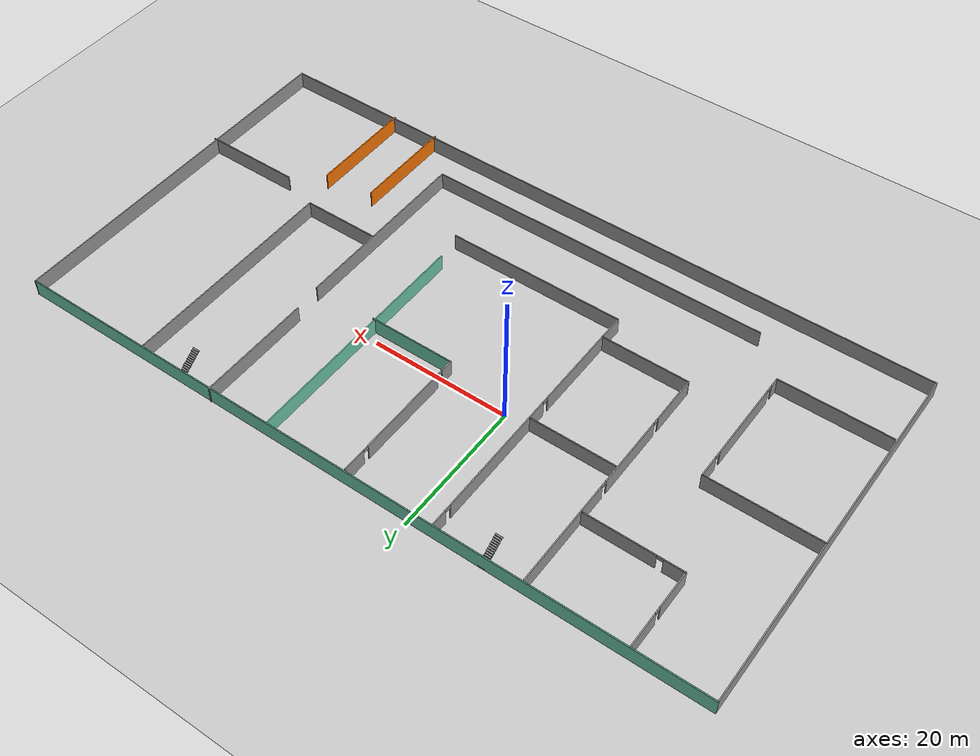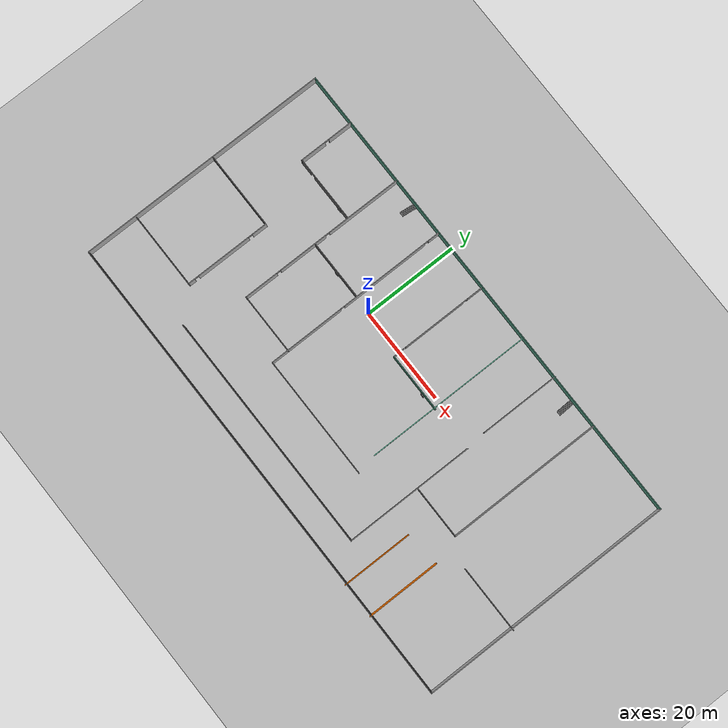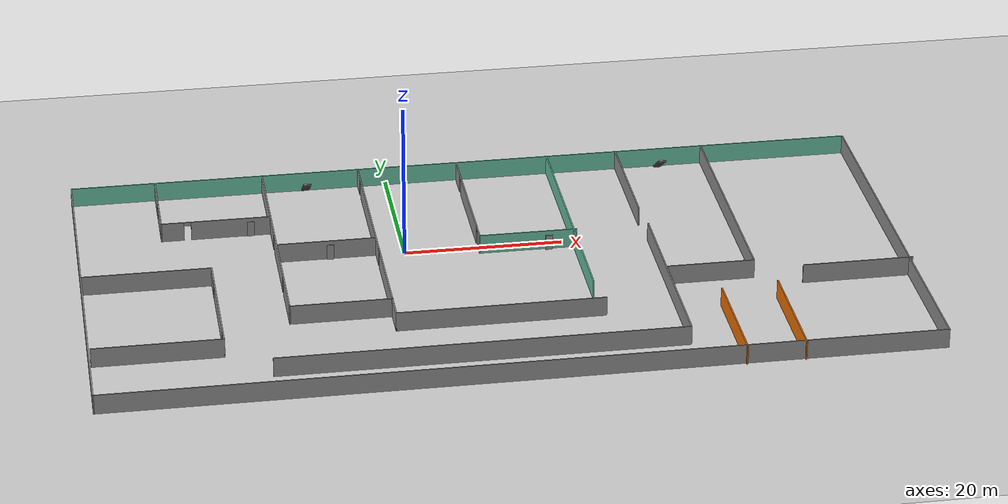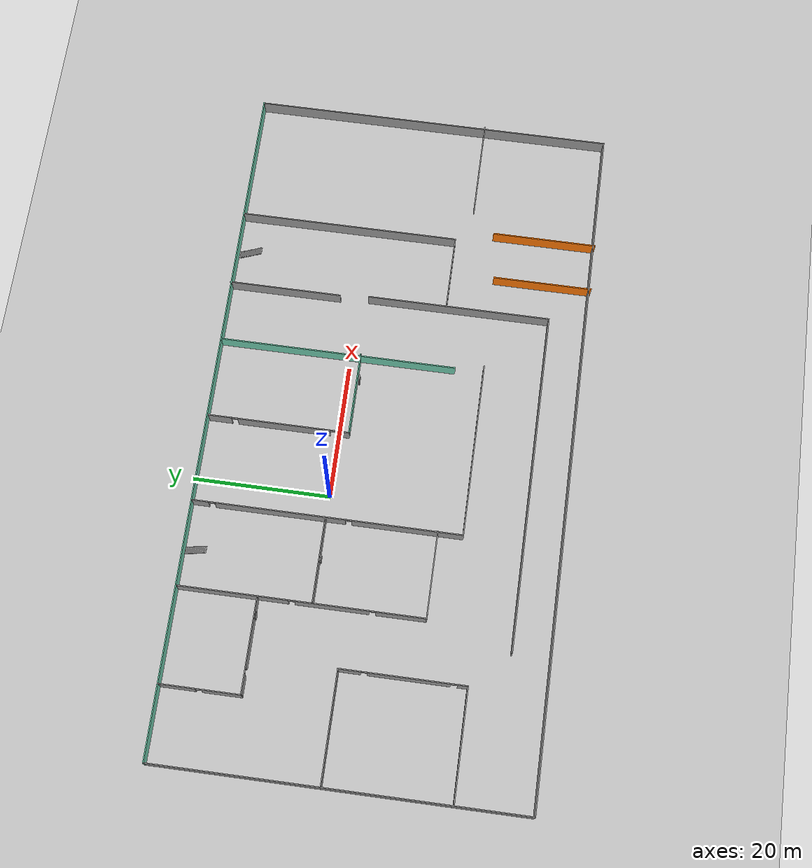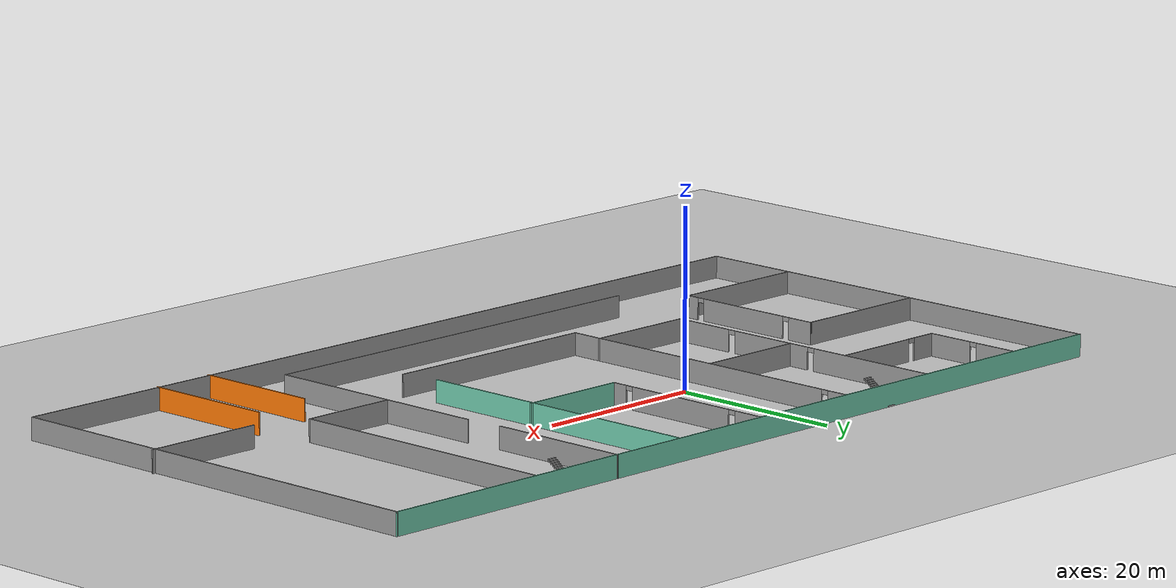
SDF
<sdf version="1.6">
 <world name="default">
  <model name="ground_plane">
   <static>1</static>
   <link name="link">
    <collision name="collision">
     <geometry><plane><normal>0 0 1</normal><size>100 100</size></plane></geometry>
     <surface>
      <contact><collide_bitmask>65535</collide_bitmask></contact>
      <friction><ode><mu>100</mu><mu2>50</mu2></ode></friction>
     </surface>
    </collision>
    <visual name="visual">
     <cast_shadows>0</cast_shadows>
     <geometry><plane><normal>0 0 1</normal><size>100 100</size></plane></geometry>
     <material>
      <script><uri>file://media/materials/scripts/gazebo.material</uri><name>Gazebo/Grey</name></script>
     </material>
    </visual>
   </link>
  </model>
  <model name="building1">
   <pose>10.3935 -7.33421 0 0 -0 0</pose>
   <link name="Door_0">
    <collision name="Door_0_Collision">
     <geometry><box><size>0.9 0.17 2</size></box></geometry>
     <pose>0 0 1 0 -0 0</pose>
    </collision>
    <visual name="Door_0_Visual">
     <pose>0 0 1 0 -0 0</pose>
     <geometry><box><size>0.9 0.17 2</size></box></geometry>
     <material>
      <script><uri>file://media/materials/scripts/gazebo.material</uri><name>Gazebo/Grey</name></script>
     </material>
    </visual>
    <pose>7.78162 5.61116 0 0 -0 0</pose>
   </link>
   <link name="Door_4">
    <collision name="Door_4_Collision">
     <geometry><box><size>0.9 0.17 2</size></box></geometry>
     <pose>0 0 1 0 -0 0</pose>
    </collision>
    <visual name="Door_4_Visual">
     <pose>0 0 1 0 -0 0</pose>
     <geometry><box><size>0.9 0.17 2</size></box></geometry>
     <material>
      <script><uri>file://media/materials/scripts/gazebo.material</uri><name>Gazebo/Grey</name></script>
     </material>
    </visual>
    <pose>-29.1903 15.0893 0 0 -0 0</pose>
   </link>
   <link name="Door_8">
    <collision name="Door_8_Collision">
     <geometry><box><size>0.9 0.17 2</size></box></geometry>
     <pose>0 0 1 0 -0 0</pose>
    </collision>
    <visual name="Door_8_Visual">
     <pose>0 0 1 0 -0 0</pose>
     <geometry><box><size>0.9 0.17 2</size></box></geometry>
     <material>
      <script><uri>file://media/materials/scripts/gazebo.material</uri><name>Gazebo/Grey</name></script>
     </material>
    </visual>
    <pose>-19.8614 7.23332 0 0 -0 0</pose>
   </link>
   <link name="Stairs_0">
    <visual name="Stairs_0_Visual_0">
     <pose>25.8503 26.4424 0.083333 0 -0 0</pose>
     <geometry><box><size>1 0.233333 0.166667</size></box></geometry>
     <material>
      <script><uri>file://media/materials/scripts/gazebo.material</uri><name>Gazebo/Grey</name></script>
      <ambient>1 1 1 1</ambient>
     </material>
     <meta><layer>0</layer></meta>
    </visual>
    <collision name="Stairs_0_Collision_0">
     <geometry><box><size>1 0.233333 0.166667</size></box></geometry>
     <pose>25.8503 26.4424 0.083333 0 -0 0</pose>
    </collision>
    <visual name="Stairs_0_Visual_1">
     <pose>25.8503 26.2091 0.25 0 -0 0</pose>
     <geometry><box><size>1 0.233333 0.166667</size></box></geometry>
     <material>
      <script><uri>file://media/materials/scripts/gazebo.material</uri><name>Gazebo/Grey</name></script>
      <ambient>1 1 1 1</ambient>
     </material>
     <meta><layer>0</layer></meta>
    </visual>
    <collision name="Stairs_0_Collision_1">
     <geometry><box><size>1 0.233333 0.166667</size></box></geometry>
     <pose>25.8503 26.2091 0.25 0 -0 0</pose>
    </collision>
    <visual name="Stairs_0_Visual_2">
     <pose>25.8503 25.9758 0.416667 0 -0 0</pose>
     <geometry><box><size>1 0.233333 0.166667</size></box></geometry>
     <material>
      <script><uri>file://media/materials/scripts/gazebo.material</uri><name>Gazebo/Grey</name></script>
      <ambient>1 1 1 1</ambient>
     </material>
     <meta><layer>0</layer></meta>
    </visual>
    <collision name="Stairs_0_Collision_2">
     <geometry><box><size>1 0.233333 0.166667</size></box></geometry>
     <pose>25.8503 25.9758 0.416667 0 -0 0</pose>
    </collision>
    <visual name="Stairs_0_Visual_3">
     <pose>25.8503 25.7424 0.583333 0 -0 0</pose>
     <geometry><box><size>1 0.233333 0.166667</size></box></geometry>
     <material>
      <script><uri>file://media/materials/scripts/gazebo.material</uri><name>Gazebo/Grey</name></script>
      <ambient>1 1 1 1</ambient>
     </material>
     <meta><layer>0</layer></meta>
    </visual>
    <collision name="Stairs_0_Collision_3">
     <geometry><box><size>1 0.233333 0.166667</size></box></geometry>
     <pose>25.8503 25.7424 0.583333 0 -0 0</pose>
    </collision>
    <visual name="Stairs_0_Visual_4">
     <pose>25.8503 25.5091 0.75 0 -0 0</pose>
     <geometry><box><size>1 0.233333 0.166667</size></box></geometry>
     <material>
      <script><uri>file://media/materials/scripts/gazebo.material</uri><name>Gazebo/Grey</name></script>
      <ambient>1 1 1 1</ambient>
     </material>
     <meta><layer>0</layer></meta>
    </visual>
    <collision name="Stairs_0_Collision_4">
     <geometry><box><size>1 0.233333 0.166667</size></box></geometry>
     <pose>25.8503 25.5091 0.75 0 -0 0</pose>
    </collision>
    <visual name="Stairs_0_Visual_5">
     <pose>25.8503 25.2758 0.916667 0 -0 0</pose>
     <geometry><box><size>1 0.233333 0.166667</size></box></geometry>
     <material>
      <script><uri>file://media/materials/scripts/gazebo.material</uri><name>Gazebo/Grey</name></script>
      <ambient>1 1 1 1</ambient>
     </material>
     <meta><layer>0</layer></meta>
    </visual>
    <collision name="Stairs_0_Collision_5">
     <geometry><box><size>1 0.233333 0.166667</size></box></geometry>
     <pose>25.8503 25.2758 0.916667 0 -0 0</pose>
    </collision>
    <visual name="Stairs_0_Visual_6">
     <pose>25.8503 25.0424 1.08333 0 -0 0</pose>
     <geometry><box><size>1 0.233333 0.166667</size></box></geometry>
     <material>
      <script><uri>file://media/materials/scripts/gazebo.material</uri><name>Gazebo/Grey</name></script>
      <ambient>1 1 1 1</ambient>
     </material>
     <meta><layer>0</layer></meta>
    </visual>
    <collision name="Stairs_0_Collision_6">
     <geometry><box><size>1 0.233333 0.166667</size></box></geometry>
     <pose>25.8503 25.0424 1.08333 0 -0 0</pose>
    </collision>
    <visual name="Stairs_0_Visual_7">
     <pose>25.8503 24.8091 1.25 0 -0 0</pose>
     <geometry><box><size>1 0.233333 0.166667</size></box></geometry>
     <material>
      <script><uri>file://media/materials/scripts/gazebo.material</uri><name>Gazebo/Grey</name></script>
      <ambient>1 1 1 1</ambient>
     </material>
     <meta><layer>0</layer></meta>
    </visual>
    <collision name="Stairs_0_Collision_7">
     <geometry><box><size>1 0.233333 0.166667</size></box></geometry>
     <pose>25.8503 24.8091 1.25 0 -0 0</pose>
    </collision>
    <visual name="Stairs_0_Visual_8">
     <pose>25.8503 24.5758 1.41667 0 -0 0</pose>
     <geometry><box><size>1 0.233333 0.166667</size></box></geometry>
     <material>
      <script><uri>file://media/materials/scripts/gazebo.material</uri><name>Gazebo/Grey</name></script>
      <ambient>1 1 1 1</ambient>
     </material>
     <meta><layer>0</layer></meta>
    </visual>
    <collision name="Stairs_0_Collision_8">
     <geometry><box><size>1 0.233333 0.166667</size></box></geometry>
     <pose>25.8503 24.5758 1.41667 0 -0 0</pose>
    </collision>
    <visual name="Stairs_0_Visual_9">
     <pose>25.8503 24.3424 1.58333 0 -0 0</pose>
     <geometry><box><size>1 0.233333 0.166667</size></box></geometry>
     <material>
      <script><uri>file://media/materials/scripts/gazebo.material</uri><name>Gazebo/Grey</name></script>
      <ambient>1 1 1 1</ambient>
     </material>
     <meta><layer>0</layer></meta>
    </visual>
    <collision name="Stairs_0_Collision_9">
     <geometry><box><size>1 0.233333 0.166667</size></box></geometry>
     <pose>25.8503 24.3424 1.58333 0 -0 0</pose>
    </collision>
    <visual name="Stairs_0_Visual_10">
     <pose>25.8503 24.1091 1.75 0 -0 0</pose>
     <geometry><box><size>1 0.233333 0.166667</size></box></geometry>
     <material>
      <script><uri>file://media/materials/scripts/gazebo.material</uri><name>Gazebo/Grey</name></script>
      <ambient>1 1 1 1</ambient>
     </material>
     <meta><layer>0</layer></meta>
    </visual>
    <collision name="Stairs_0_Collision_10">
     <geometry><box><size>1 0.233333 0.166667</size></box></geometry>
     <pose>25.8503 24.1091 1.75 0 -0 0</pose>
    </collision>
    <visual name="Stairs_0_Visual_11">
     <pose>25.8503 23.8758 1.91667 0 -0 0</pose>
     <geometry><box><size>1 0.233333 0.166667</size></box></geometry>
     <material>
      <script><uri>file://media/materials/scripts/gazebo.material</uri><name>Gazebo/Grey</name></script>
      <ambient>1 1 1 1</ambient>
     </material>
     <meta><layer>0</layer></meta>
    </visual>
    <collision name="Stairs_0_Collision_11">
     <geometry><box><size>1 0.233333 0.166667</size></box></geometry>
     <pose>25.8503 23.8758 1.91667 0 -0 0</pose>
    </collision>
    <visual name="Stairs_0_Visual_12">
     <pose>25.8503 23.6424 2.08333 0 -0 0</pose>
     <geometry><box><size>1 0.233333 0.166667</size></box></geometry>
     <material>
      <script><uri>file://media/materials/scripts/gazebo.material</uri><name>Gazebo/Grey</name></script>
      <ambient>1 1 1 1</ambient>
     </material>
     <meta><layer>0</layer></meta>
    </visual>
    <collision name="Stairs_0_Collision_12">
     <geometry><box><size>1 0.233333 0.166667</size></box></geometry>
     <pose>25.8503 23.6424 2.08333 0 -0 0</pose>
    </collision>
    <visual name="Stairs_0_Visual_13">
     <pose>25.8503 23.4091 2.25 0 -0 0</pose>
     <geometry><box><size>1 0.233333 0.166667</size></box></geometry>
     <material>
      <script><uri>file://media/materials/scripts/gazebo.material</uri><name>Gazebo/Grey</name></script>
      <ambient>1 1 1 1</ambient>
     </material>
     <meta><layer>0</layer></meta>
    </visual>
    <collision name="Stairs_0_Collision_13">
     <geometry><box><size>1 0.233333 0.166667</size></box></geometry>
     <pose>25.8503 23.4091 2.25 0 -0 0</pose>
    </collision>
    <visual name="Stairs_0_Visual_14">
     <pose>25.8503 23.1758 2.41667 0 -0 0</pose>
     <geometry><box><size>1 0.233333 0.166667</size></box></geometry>
     <material>
      <script><uri>file://media/materials/scripts/gazebo.material</uri><name>Gazebo/Grey</name></script>
      <ambient>1 1 1 1</ambient>
     </material>
     <meta><layer>0</layer></meta>
    </visual>
    <collision name="Stairs_0_Collision_14">
     <geometry><box><size>1 0.233333 0.166667</size></box></geometry>
     <pose>25.8503 23.1758 2.41667 0 -0 0</pose>
    </collision>
   </link>
   <link name="Stairs_1">
    <visual name="Stairs_1_Visual_0">
     <pose>-21.0203 26.752 0.083333 0 -0 0</pose>
     <geometry><box><size>1 0.233333 0.166667</size></box></geometry>
     <material>
      <script><uri>file://media/materials/scripts/gazebo.material</uri><name>Gazebo/Grey</name></script>
      <ambient>1 1 1 1</ambient>
     </material>
     <meta><layer>0</layer></meta>
    </visual>
    <collision name="Stairs_1_Collision_0">
     <geometry><box><size>1 0.233333 0.166667</size></box></geometry>
     <pose>-21.0203 26.752 0.083333 0 -0 0</pose>
    </collision>
    <visual name="Stairs_1_Visual_1">
     <pose>-21.0203 26.5186 0.25 0 -0 0</pose>
     <geometry><box><size>1 0.233333 0.166667</size></box></geometry>
     <material>
      <script><uri>file://media/materials/scripts/gazebo.material</uri><name>Gazebo/Grey</name></script>
      <ambient>1 1 1 1</ambient>
     </material>
     <meta><layer>0</layer></meta>
    </visual>
    <collision name="Stairs_1_Collision_1">
     <geometry><box><size>1 0.233333 0.166667</size></box></geometry>
     <pose>-21.0203 26.5186 0.25 0 -0 0</pose>
    </collision>
    <visual name="Stairs_1_Visual_2">
     <pose>-21.0203 26.2853 0.416667 0 -0 0</pose>
     <geometry><box><size>1 0.233333 0.166667</size></box></geometry>
     <material>
      <script><uri>file://media/materials/scripts/gazebo.material</uri><name>Gazebo/Grey</name></script>
      <ambient>1 1 1 1</ambient>
     </material>
     <meta><layer>0</layer></meta>
    </visual>
    <collision name="Stairs_1_Collision_2">
     <geometry><box><size>1 0.233333 0.166667</size></box></geometry>
     <pose>-21.0203 26.2853 0.416667 0 -0 0</pose>
    </collision>
    <visual name="Stairs_1_Visual_3">
     <pose>-21.0203 26.052 0.583333 0 -0 0</pose>
     <geometry><box><size>1 0.233333 0.166667</size></box></geometry>
     <material>
      <script><uri>file://media/materials/scripts/gazebo.material</uri><name>Gazebo/Grey</name></script>
      <ambient>1 1 1 1</ambient>
     </material>
     <meta><layer>0</layer></meta>
    </visual>
    <collision name="Stairs_1_Collision_3">
     <geometry><box><size>1 0.233333 0.166667</size></box></geometry>
     <pose>-21.0203 26.052 0.583333 0 -0 0</pose>
    </collision>
    <visual name="Stairs_1_Visual_4">
     <pose>-21.0203 25.8186 0.75 0 -0 0</pose>
     <geometry><box><size>1 0.233333 0.166667</size></box></geometry>
     <material>
      <script><uri>file://media/materials/scripts/gazebo.material</uri><name>Gazebo/Grey</name></script>
      <ambient>1 1 1 1</ambient>
     </material>
     <meta><layer>0</layer></meta>
    </visual>
    <collision name="Stairs_1_Collision_4">
     <geometry><box><size>1 0.233333 0.166667</size></box></geometry>
     <pose>-21.0203 25.8186 0.75 0 -0 0</pose>
    </collision>
    <visual name="Stairs_1_Visual_5">
     <pose>-21.0203 25.5853 0.916667 0 -0 0</pose>
     <geometry><box><size>1 0.233333 0.166667</size></box></geometry>
     <material>
      <script><uri>file://media/materials/scripts/gazebo.material</uri><name>Gazebo/Grey</name></script>
      <ambient>1 1 1 1</ambient>
     </material>
     <meta><layer>0</layer></meta>
    </visual>
    <collision name="Stairs_1_Collision_5">
     <geometry><box><size>1 0.233333 0.166667</size></box></geometry>
     <pose>-21.0203 25.5853 0.916667 0 -0 0</pose>
    </collision>
    <visual name="Stairs_1_Visual_6">
     <pose>-21.0203 25.352 1.08333 0 -0 0</pose>
     <geometry><box><size>1 0.233333 0.166667</size></box></geometry>
     <material>
      <script><uri>file://media/materials/scripts/gazebo.material</uri><name>Gazebo/Grey</name></script>
      <ambient>1 1 1 1</ambient>
     </material>
     <meta><layer>0</layer></meta>
    </visual>
    <collision name="Stairs_1_Collision_6">
     <geometry><box><size>1 0.233333 0.166667</size></box></geometry>
     <pose>-21.0203 25.352 1.08333 0 -0 0</pose>
    </collision>
    <visual name="Stairs_1_Visual_7">
     <pose>-21.0203 25.1186 1.25 0 -0 0</pose>
     <geometry><box><size>1 0.233333 0.166667</size></box></geometry>
     <material>
      <script><uri>file://media/materials/scripts/gazebo.material</uri><name>Gazebo/Grey</name></script>
      <ambient>1 1 1 1</ambient>
     </material>
     <meta><layer>0</layer></meta>
    </visual>
    <collision name="Stairs_1_Collision_7">
     <geometry><box><size>1 0.233333 0.166667</size></box></geometry>
     <pose>-21.0203 25.1186 1.25 0 -0 0</pose>
    </collision>
    <visual name="Stairs_1_Visual_8">
     <pose>-21.0203 24.8853 1.41667 0 -0 0</pose>
     <geometry><box><size>1 0.233333 0.166667</size></box></geometry>
     <material>
      <script><uri>file://media/materials/scripts/gazebo.material</uri><name>Gazebo/Grey</name></script>
      <ambient>1 1 1 1</ambient>
     </material>
     <meta><layer>0</layer></meta>
    </visual>
    <collision name="Stairs_1_Collision_8">
     <geometry><box><size>1 0.233333 0.166667</size></box></geometry>
     <pose>-21.0203 24.8853 1.41667 0 -0 0</pose>
    </collision>
    <visual name="Stairs_1_Visual_9">
     <pose>-21.0203 24.652 1.58333 0 -0 0</pose>
     <geometry><box><size>1 0.233333 0.166667</size></box></geometry>
     <material>
      <script><uri>file://media/materials/scripts/gazebo.material</uri><name>Gazebo/Grey</name></script>
      <ambient>1 1 1 1</ambient>
     </material>
     <meta><layer>0</layer></meta>
    </visual>
    <collision name="Stairs_1_Collision_9">
     <geometry><box><size>1 0.233333 0.166667</size></box></geometry>
     <pose>-21.0203 24.652 1.58333 0 -0 0</pose>
    </collision>
    <visual name="Stairs_1_Visual_10">
     <pose>-21.0203 24.4186 1.75 0 -0 0</pose>
     <geometry><box><size>1 0.233333 0.166667</size></box></geometry>
     <material>
      <script><uri>file://media/materials/scripts/gazebo.material</uri><name>Gazebo/Grey</name></script>
      <ambient>1 1 1 1</ambient>
     </material>
     <meta><layer>0</layer></meta>
    </visual>
    <collision name="Stairs_1_Collision_10">
     <geometry><box><size>1 0.233333 0.166667</size></box></geometry>
     <pose>-21.0203 24.4186 1.75 0 -0 0</pose>
    </collision>
    <visual name="Stairs_1_Visual_11">
     <pose>-21.0203 24.1853 1.91667 0 -0 0</pose>
     <geometry><box><size>1 0.233333 0.166667</size></box></geometry>
     <material>
      <script><uri>file://media/materials/scripts/gazebo.material</uri><name>Gazebo/Grey</name></script>
      <ambient>1 1 1 1</ambient>
     </material>
     <meta><layer>0</layer></meta>
    </visual>
    <collision name="Stairs_1_Collision_11">
     <geometry><box><size>1 0.233333 0.166667</size></box></geometry>
     <pose>-21.0203 24.1853 1.91667 0 -0 0</pose>
    </collision>
    <visual name="Stairs_1_Visual_12">
     <pose>-21.0203 23.952 2.08333 0 -0 0</pose>
     <geometry><box><size>1 0.233333 0.166667</size></box></geometry>
     <material>
      <script><uri>file://media/materials/scripts/gazebo.material</uri><name>Gazebo/Grey</name></script>
      <ambient>1 1 1 1</ambient>
     </material>
     <meta><layer>0</layer></meta>
    </visual>
    <collision name="Stairs_1_Collision_12">
     <geometry><box><size>1 0.233333 0.166667</size></box></geometry>
     <pose>-21.0203 23.952 2.08333 0 -0 0</pose>
    </collision>
    <visual name="Stairs_1_Visual_13">
     <pose>-21.0203 23.7186 2.25 0 -0 0</pose>
     <geometry><box><size>1 0.233333 0.166667</size></box></geometry>
     <material>
      <script><uri>file://media/materials/scripts/gazebo.material</uri><name>Gazebo/Grey</name></script>
      <ambient>1 1 1 1</ambient>
     </material>
     <meta><layer>0</layer></meta>
    </visual>
    <collision name="Stairs_1_Collision_13">
     <geometry><box><size>1 0.233333 0.166667</size></box></geometry>
     <pose>-21.0203 23.7186 2.25 0 -0 0</pose>
    </collision>
    <visual name="Stairs_1_Visual_14">
     <pose>-21.0203 23.4853 2.41667 0 -0 0</pose>
     <geometry><box><size>1 0.233333 0.166667</size></box></geometry>
     <material>
      <script><uri>file://media/materials/scripts/gazebo.material</uri><name>Gazebo/Grey</name></script>
      <ambient>1 1 1 1</ambient>
     </material>
     <meta><layer>0</layer></meta>
    </visual>
    <collision name="Stairs_1_Collision_14">
     <geometry><box><size>1 0.233333 0.166667</size></box></geometry>
     <pose>-21.0203 23.4853 2.41667 0 -0 0</pose>
    </collision>
   </link>
   <link name="Wall_0">
    <collision name="Wall_0_Collision">
     <geometry><box><size>53.5 0.15 2.5</size></box></geometry>
     <pose>0 0 1.25 0 -0 0</pose>
    </collision>
    <visual name="Wall_0_Visual">
     <pose>0 0 1.25 0 -0 0</pose>
     <geometry><box><size>53.5 0.15 2.5</size></box></geometry>
     <material>
      <script><uri>file://media/materials/scripts/gazebo.material</uri><name>Gazebo/Grey</name></script>
      <ambient>1 1 1 1</ambient>
     </material>
     <meta><layer>0</layer></meta>
    </visual>
    <pose>-51.3545 0.110213 0 0 0 -1.5708</pose>
   </link>
   <link name="Wall_1">
    <collision name="Wall_1_Collision">
     <geometry><box><size>102.5 0.15 2.5</size></box></geometry>
     <pose>0 0 1.25 0 -0 0</pose>
    </collision>
    <visual name="Wall_1_Visual">
     <pose>0 0 1.25 0 -0 0</pose>
     <geometry><box><size>102.5 0.15 2.5</size></box></geometry>
     <material>
      <script><uri>file://media/materials/scripts/gazebo.material</uri><name>Gazebo/Grey</name></script>
      <ambient>1 1 1 1</ambient>
     </material>
     <meta><layer>0</layer></meta>
    </visual>
    <pose>-0.179399 -26.5648 0 0 0 -1e-06</pose>
   </link>
   <link name="Wall_10">
    <collision name="Wall_10_Collision">
     <geometry><box><size>35 0.15 2.5</size></box></geometry>
     <pose>0 0 1.25 0 -0 0</pose>
    </collision>
    <visual name="Wall_10_Visual">
     <pose>0 0 1.25 0 -0 0</pose>
     <geometry><box><size>35 0.15 2.5</size></box></geometry>
     <material>
      <script><uri>file://media/materials/scripts/gazebo.material</uri><name>Gazebo/Grey</name></script>
      <ambient>0.435294 0.796078 0.67451 1</ambient>
     </material>
     <meta><layer>0</layer></meta>
    </visual>
    <pose>10.9813 9.26626 0 0 0 -1.5708</pose>
   </link>
   <link name="Wall_12">
    <pose>-1.06449 16.203 0 0 0 -1.5708</pose>
    <visual name="Wall_12_Visual_0">
     <pose>-8.66059 0 1.25 0 -0 0</pose>
     <geometry><box><size>3.42882 0.15 2.5</size></box></geometry>
     <material>
      <script><uri>file://media/materials/scripts/gazebo.material</uri><name>Gazebo/Grey</name></script>
      <ambient>1 1 1 1</ambient>
     </material>
     <meta><layer>0</layer></meta>
    </visual>
    <collision name="Wall_12_Collision_0">
     <geometry><box><size>3.42882 0.15 2.5</size></box></geometry>
     <pose>-8.66059 0 1.25 0 -0 0</pose>
    </collision>
    <visual name="Wall_12_Visual_1">
     <pose>0.762023 0 1.25 0 -0 0</pose>
     <geometry><box><size>13.6164 0.15 2.5</size></box></geometry>
     <material>
      <script><uri>file://media/materials/scripts/gazebo.material</uri><name>Gazebo/Grey</name></script>
      <ambient>1 1 1 1</ambient>
     </material>
     <meta><layer>0</layer></meta>
    </visual>
    <collision name="Wall_12_Collision_1">
     <geometry><box><size>13.6164 0.15 2.5</size></box></geometry>
     <pose>0.762023 0 1.25 0 -0 0</pose>
    </collision>
    <visual name="Wall_12_Visual_2">
     <pose>9.42261 0 1.25 0 -0 0</pose>
     <geometry><box><size>1.90477 0.15 2.5</size></box></geometry>
     <material>
      <script><uri>file://media/materials/scripts/gazebo.material</uri><name>Gazebo/Grey</name></script>
      <ambient>1 1 1 1</ambient>
     </material>
     <meta><layer>0</layer></meta>
    </visual>
    <collision name="Wall_12_Collision_2">
     <geometry><box><size>1.90477 0.15 2.5</size></box></geometry>
     <pose>9.42261 0 1.25 0 -0 0</pose>
    </collision>
    <visual name="Wall_12_Visual_3">
     <pose>-6.49618 0 2.25 0 -0 0</pose>
     <geometry><box><size>0.9 0.15 0.5</size></box></geometry>
     <material>
      <script><uri>file://media/materials/scripts/gazebo.material</uri><name>Gazebo/Grey</name></script>
      <ambient>1 1 1 1</ambient>
     </material>
     <meta><layer>0</layer></meta>
    </visual>
    <collision name="Wall_12_Collision_3">
     <geometry><box><size>0.9 0.15 0.5</size></box></geometry>
     <pose>-6.49618 0 2.25 0 -0 0</pose>
    </collision>
    <visual name="Wall_12_Visual_4">
     <pose>8.02023 0 2.25 0 -0 0</pose>
     <geometry><box><size>0.9 0.15 0.5</size></box></geometry>
     <material>
      <script><uri>file://media/materials/scripts/gazebo.material</uri><name>Gazebo/Grey</name></script>
      <ambient>1 1 1 1</ambient>
     </material>
     <meta><layer>0</layer></meta>
    </visual>
    <collision name="Wall_12_Collision_4">
     <geometry><box><size>0.9 0.15 0.5</size></box></geometry>
     <pose>8.02023 0 2.25 0 -0 0</pose>
    </collision>
   </link>
   <link name="Wall_13">
    <collision name="Wall_13_Collision">
     <geometry><box><size>12.5 0.15 2.5</size></box></geometry>
     <pose>0 0 1.25 0 -0 0</pose>
    </collision>
    <visual name="Wall_13_Visual">
     <pose>0 0 1.25 0 -0 0</pose>
     <geometry><box><size>12.5 0.15 2.5</size></box></geometry>
     <material>
      <script><uri>file://media/materials/scripts/gazebo.material</uri><name>Gazebo/Grey</name></script>
      <ambient>0.435294 0.796078 0.67451 1</ambient>
     </material>
     <meta><layer>0</layer></meta>
    </visual>
    <pose>5.11051 5.90304 0 0 -0 0</pose>
   </link>
   <link name="Wall_15">
    <collision name="Wall_15_Collision">
     <geometry><box><size>16.75 0.15 2.5</size></box></geometry>
     <pose>0 0 1.25 0 -0 0</pose>
    </collision>
    <visual name="Wall_15_Visual">
     <pose>0 0 1.25 0 -0 0</pose>
     <geometry><box><size>16.75 0.15 2.5</size></box></geometry>
     <material>
      <script><uri>file://media/materials/scripts/gazebo.material</uri><name>Gazebo/Grey</name></script>
      <ambient>1 1 1 1</ambient>
     </material>
     <meta><layer>0</layer></meta>
    </visual>
    <pose>20.2038 18.5795 0 0 0 -1.5708</pose>
   </link>
   <link name="Wall_18">
    <collision name="Wall_18_Collision">
     <geometry><box><size>27.25 0.15 2.5</size></box></geometry>
     <pose>0 0 1.25 0 -0 0</pose>
    </collision>
    <visual name="Wall_18_Visual">
     <pose>0 0 1.25 0 -0 0</pose>
     <geometry><box><size>27.25 0.15 2.5</size></box></geometry>
     <material>
      <script><uri>file://media/materials/scripts/gazebo.material</uri><name>Gazebo/Grey</name></script>
      <ambient>1 1 1 1</ambient>
     </material>
     <meta><layer>0</layer></meta>
    </visual>
    <pose>20.5803 -7.56241 0 0 0 -1.5708</pose>
   </link>
   <link name="Wall_19">
    <collision name="Wall_19_Collision">
     <geometry><box><size>50.5 0.15 2.5</size></box></geometry>
     <pose>0 0 1.25 0 -0 0</pose>
    </collision>
    <visual name="Wall_19_Visual">
     <pose>0 0 1.25 0 -0 0</pose>
     <geometry><box><size>50.5 0.15 2.5</size></box></geometry>
     <material>
      <script><uri>file://media/materials/scripts/gazebo.material</uri><name>Gazebo/Grey</name></script>
      <ambient>1 1 1 1</ambient>
     </material>
     <meta><layer>0</layer></meta>
    </visual>
    <pose>-4.59474 -21.1124 0 0 -0 3.14159</pose>
   </link>
   <link name="Wall_2">
    <collision name="Wall_2_Collision">
     <geometry><box><size>53.5 0.15 2.5</size></box></geometry>
     <pose>0 0 1.25 0 -0 0</pose>
    </collision>
    <visual name="Wall_2_Visual">
     <pose>0 0 1.25 0 -0 0</pose>
     <geometry><box><size>53.5 0.15 2.5</size></box></geometry>
     <material>
      <script><uri>file://media/materials/scripts/gazebo.material</uri><name>Gazebo/Grey</name></script>
      <ambient>1 1 1 1</ambient>
     </material>
     <meta><layer>0</layer></meta>
    </visual>
    <pose>50.9956 0.110178 0 0 -0 1.5708</pose>
   </link>
   <link name="Wall_21">
    <pose>-26.6289 8.91872 0 0 0 -1.5708</pose>
    <visual name="Wall_21_Visual_0">
     <pose>-9.81212 0 1.25 0 -0 0</pose>
     <geometry><box><size>15.8758 0.15 2.5</size></box></geometry>
     <material>
      <script><uri>file://media/materials/scripts/gazebo.material</uri><name>Gazebo/Grey</name></script>
      <ambient>1 1 1 1</ambient>
     </material>
     <meta><layer>0</layer></meta>
    </visual>
    <collision name="Wall_21_Collision_0">
     <geometry><box><size>15.8758 0.15 2.5</size></box></geometry>
     <pose>-9.81212 0 1.25 0 -0 0</pose>
    </collision>
    <visual name="Wall_21_Visual_1">
     <pose>4.30404 0 1.25 0 -0 0</pose>
     <geometry><box><size>10.5566 0.15 2.5</size></box></geometry>
     <material>
      <script><uri>file://media/materials/scripts/gazebo.material</uri><name>Gazebo/Grey</name></script>
      <ambient>1 1 1 1</ambient>
     </material>
     <meta><layer>0</layer></meta>
    </visual>
    <collision name="Wall_21_Collision_1">
     <geometry><box><size>10.5566 0.15 2.5</size></box></geometry>
     <pose>4.30404 0 1.25 0 -0 0</pose>
    </collision>
    <visual name="Wall_21_Visual_2">
     <pose>14.1162 0 1.25 0 -0 0</pose>
     <geometry><box><size>7.26767 0.15 2.5</size></box></geometry>
     <material>
      <script><uri>file://media/materials/scripts/gazebo.material</uri><name>Gazebo/Grey</name></script>
      <ambient>1 1 1 1</ambient>
     </material>
     <meta><layer>0</layer></meta>
    </visual>
    <collision name="Wall_21_Collision_2">
     <geometry><box><size>7.26767 0.15 2.5</size></box></geometry>
     <pose>14.1162 0 1.25 0 -0 0</pose>
    </collision>
    <visual name="Wall_21_Visual_3">
     <pose>-1.42425 0 2.25 0 -0 0</pose>
     <geometry><box><size>0.9 0.15 0.5</size></box></geometry>
     <material>
      <script><uri>file://media/materials/scripts/gazebo.material</uri><name>Gazebo/Grey</name></script>
      <ambient>1 1 1 1</ambient>
     </material>
     <meta><layer>0</layer></meta>
    </visual>
    <collision name="Wall_21_Collision_3">
     <geometry><box><size>0.9 0.15 0.5</size></box></geometry>
     <pose>-1.42425 0 2.25 0 -0 0</pose>
    </collision>
    <visual name="Wall_21_Visual_4">
     <pose>10.0323 0 2.25 0 -0 0</pose>
     <geometry><box><size>0.9 0.15 0.5</size></box></geometry>
     <material>
      <script><uri>file://media/materials/scripts/gazebo.material</uri><name>Gazebo/Grey</name></script>
      <ambient>1 1 1 1</ambient>
     </material>
     <meta><layer>0</layer></meta>
    </visual>
    <collision name="Wall_21_Collision_4">
     <geometry><box><size>0.9 0.15 0.5</size></box></geometry>
     <pose>10.0323 0 2.25 0 -0 0</pose>
    </collision>
   </link>
   <link name="Wall_22">
    <collision name="Wall_22_Collision">
     <geometry><box><size>12.75 0.15 2.5</size></box></geometry>
     <pose>0 0 1.25 0 -0 0</pose>
    </collision>
    <visual name="Wall_22_Visual">
     <pose>0 0 1.25 0 -0 0</pose>
     <geometry><box><size>12.75 0.15 2.5</size></box></geometry>
     <material>
      <script><uri>file://media/materials/scripts/gazebo.material</uri><name>Gazebo/Grey</name></script>
      <ambient>1 1 1 1</ambient>
     </material>
     <meta><layer>0</layer></meta>
    </visual>
    <pose>-20.329 -8.75628 0 0 -0 0</pose>
   </link>
   <link name="Wall_24">
    <collision name="Wall_24_Collision">
     <geometry><box><size>12.5 0.15 2.5</size></box></geometry>
     <pose>0 0 1.25 0 -0 0</pose>
    </collision>
    <visual name="Wall_24_Visual">
     <pose>0 0 1.25 0 -0 0</pose>
     <geometry><box><size>12.5 0.15 2.5</size></box></geometry>
     <material>
      <script><uri>file://media/materials/scripts/gazebo.material</uri><name>Gazebo/Grey</name></script>
      <ambient>1 1 1 1</ambient>
     </material>
     <meta><layer>0</layer></meta>
    </visual>
    <pose>-20.2657 7.39577 0 0 -0 0</pose>
   </link>
   <link name="Wall_26">
    <pose>-40.5569 20.9819 0 0 0 -1.5708</pose>
    <visual name="Wall_26_Visual_0">
     <pose>-3.24397 0 1.25 0 -0 0</pose>
     <geometry><box><size>5.26205 0.15 2.5</size></box></geometry>
     <material>
      <script><uri>file://media/materials/scripts/gazebo.material</uri><name>Gazebo/Grey</name></script>
      <ambient>1 1 1 1</ambient>
     </material>
     <meta><layer>0</layer></meta>
    </visual>
    <collision name="Wall_26_Collision_0">
     <geometry><box><size>5.26205 0.15 2.5</size></box></geometry>
     <pose>-3.24397 0 1.25 0 -0 0</pose>
    </collision>
    <visual name="Wall_26_Visual_1">
     <pose>3.08103 0 1.25 0 -0 0</pose>
     <geometry><box><size>5.58795 0.15 2.5</size></box></geometry>
     <material>
      <script><uri>file://media/materials/scripts/gazebo.material</uri><name>Gazebo/Grey</name></script>
      <ambient>1 1 1 1</ambient>
     </material>
     <meta><layer>0</layer></meta>
    </visual>
    <collision name="Wall_26_Collision_1">
     <geometry><box><size>5.58795 0.15 2.5</size></box></geometry>
     <pose>3.08103 0 1.25 0 -0 0</pose>
    </collision>
    <visual name="Wall_26_Visual_2">
     <pose>-0.162948 0 2.25 0 -0 0</pose>
     <geometry><box><size>0.9 0.15 0.5</size></box></geometry>
     <material>
      <script><uri>file://media/materials/scripts/gazebo.material</uri><name>Gazebo/Grey</name></script>
      <ambient>1 1 1 1</ambient>
     </material>
     <meta><layer>0</layer></meta>
    </visual>
    <collision name="Wall_26_Collision_2">
     <geometry><box><size>0.9 0.15 0.5</size></box></geometry>
     <pose>-0.162948 0 2.25 0 -0 0</pose>
    </collision>
   </link>
   <link name="Wall_27">
    <pose>-33.6319 15.1819 0 0 -0 0</pose>
    <visual name="Wall_27_Visual_0">
     <pose>-5.51402 0 1.25 0 -0 0</pose>
     <geometry><box><size>2.97196 0.15 2.5</size></box></geometry>
     <material>
      <script><uri>file://media/materials/scripts/gazebo.material</uri><name>Gazebo/Grey</name></script>
      <ambient>1 1 1 1</ambient>
     </material>
     <meta><layer>0</layer></meta>
    </visual>
    <collision name="Wall_27_Collision_0">
     <geometry><box><size>2.97196 0.15 2.5</size></box></geometry>
     <pose>-5.51402 0 1.25 0 -0 0</pose>
    </collision>
    <visual name="Wall_27_Visual_1">
     <pose>1.93598 0 1.25 0 -0 0</pose>
     <geometry><box><size>10.128 0.15 2.5</size></box></geometry>
     <material>
      <script><uri>file://media/materials/scripts/gazebo.material</uri><name>Gazebo/Grey</name></script>
      <ambient>1 1 1 1</ambient>
     </material>
     <meta><layer>0</layer></meta>
    </visual>
    <collision name="Wall_27_Collision_1">
     <geometry><box><size>10.128 0.15 2.5</size></box></geometry>
     <pose>1.93598 0 1.25 0 -0 0</pose>
    </collision>
    <visual name="Wall_27_Visual_2">
     <pose>-3.57803 0 2.25 0 -0 0</pose>
     <geometry><box><size>0.9 0.15 0.5</size></box></geometry>
     <material>
      <script><uri>file://media/materials/scripts/gazebo.material</uri><name>Gazebo/Grey</name></script>
      <ambient>1 1 1 1</ambient>
     </material>
     <meta><layer>0</layer></meta>
    </visual>
    <collision name="Wall_27_Collision_2">
     <geometry><box><size>0.9 0.15 0.5</size></box></geometry>
     <pose>-3.57803 0 2.25 0 -0 0</pose>
    </collision>
   </link>
   <link name="Wall_29">
    <collision name="Wall_29_Collision">
     <geometry><box><size>16.25 0.15 2.5</size></box></geometry>
     <pose>0 0 1.25 0 -0 0</pose>
    </collision>
    <visual name="Wall_29_Visual">
     <pose>0 0 1.25 0 -0 0</pose>
     <geometry><box><size>16.25 0.15 2.5</size></box></geometry>
     <material>
      <script><uri>file://media/materials/scripts/gazebo.material</uri><name>Gazebo/Grey</name></script>
      <ambient>1 1 1 1</ambient>
     </material>
     <meta><layer>0</layer></meta>
    </visual>
    <pose>-43.2351 2.50217 0 0 -0 0</pose>
   </link>
   <link name="Wall_3">
    <collision name="Wall_3_Collision">
     <geometry><box><size>102.5 0.15 2.5</size></box></geometry>
     <pose>0 0 1.25 0 -0 0</pose>
    </collision>
    <visual name="Wall_3_Visual">
     <pose>0 0 1.25 0 -0 0</pose>
     <geometry><box><size>102.5 0.15 2.5</size></box></geometry>
     <material>
      <script><uri>file://media/materials/scripts/gazebo.material</uri><name>Gazebo/Grey</name></script>
      <ambient>0.435294 0.796078 0.67451 1</ambient>
     </material>
     <meta><layer>0</layer></meta>
    </visual>
    <pose>-0.179496 26.7852 0 0 -0 3.14159</pose>
   </link>
   <link name="Wall_30">
    <pose>-35.1851 -6.54783 0 0 0 -1.5708</pose>
    <visual name="Wall_30_Visual_0">
     <pose>-7.50461 0 1.25 0 -0 0</pose>
     <geometry><box><size>3.24078 0.15 2.5</size></box></geometry>
     <material>
      <script><uri>file://media/materials/scripts/gazebo.material</uri><name>Gazebo/Grey</name></script>
      <ambient>1 1 1 1</ambient>
     </material>
     <meta><layer>0</layer></meta>
    </visual>
    <collision name="Wall_30_Collision_0">
     <geometry><box><size>3.24078 0.15 2.5</size></box></geometry>
     <pose>-7.50461 0 1.25 0 -0 0</pose>
    </collision>
    <visual name="Wall_30_Visual_1">
     <pose>0.866901 0 1.25 0 -0 0</pose>
     <geometry><box><size>11.7022 0.15 2.5</size></box></geometry>
     <material>
      <script><uri>file://media/materials/scripts/gazebo.material</uri><name>Gazebo/Grey</name></script>
      <ambient>1 1 1 1</ambient>
     </material>
     <meta><layer>0</layer></meta>
    </visual>
    <collision name="Wall_30_Collision_1">
     <geometry><box><size>11.7022 0.15 2.5</size></box></geometry>
     <pose>0.866901 0 1.25 0 -0 0</pose>
    </collision>
    <visual name="Wall_30_Visual_2">
     <pose>8.37151 0 1.25 0 -0 0</pose>
     <geometry><box><size>1.50698 0.15 2.5</size></box></geometry>
     <material>
      <script><uri>file://media/materials/scripts/gazebo.material</uri><name>Gazebo/Grey</name></script>
      <ambient>1 1 1 1</ambient>
     </material>
     <meta><layer>0</layer></meta>
    </visual>
    <collision name="Wall_30_Collision_2">
     <geometry><box><size>1.50698 0.15 2.5</size></box></geometry>
     <pose>8.37151 0 1.25 0 -0 0</pose>
    </collision>
    <visual name="Wall_30_Visual_3">
     <pose>-5.43422 0 2.25 0 -0 0</pose>
     <geometry><box><size>0.9 0.15 0.5</size></box></geometry>
     <material>
      <script><uri>file://media/materials/scripts/gazebo.material</uri><name>Gazebo/Grey</name></script>
      <ambient>1 1 1 1</ambient>
     </material>
     <meta><layer>0</layer></meta>
    </visual>
    <collision name="Wall_30_Collision_3">
     <geometry><box><size>0.9 0.15 0.5</size></box></geometry>
     <pose>-5.43422 0 2.25 0 -0 0</pose>
    </collision>
    <visual name="Wall_30_Visual_4">
     <pose>7.16802 0 2.25 0 -0 0</pose>
     <geometry><box><size>0.9 0.15 0.5</size></box></geometry>
     <material>
      <script><uri>file://media/materials/scripts/gazebo.material</uri><name>Gazebo/Grey</name></script>
      <ambient>1 1 1 1</ambient>
     </material>
     <meta><layer>0</layer></meta>
    </visual>
    <collision name="Wall_30_Collision_4">
     <geometry><box><size>0.9 0.15 0.5</size></box></geometry>
     <pose>7.16802 0 2.25 0 -0 0</pose>
    </collision>
   </link>
   <link name="Wall_31">
    <collision name="Wall_31_Collision">
     <geometry><box><size>16 0.15 2.5</size></box></geometry>
     <pose>0 0 1.25 0 -0 0</pose>
    </collision>
    <visual name="Wall_31_Visual">
     <pose>0 0 1.25 0 -0 0</pose>
     <geometry><box><size>16 0.15 2.5</size></box></geometry>
     <material>
      <script><uri>file://media/materials/scripts/gazebo.material</uri><name>Gazebo/Grey</name></script>
      <ambient>1 1 1 1</ambient>
     </material>
     <meta><layer>0</layer></meta>
    </visual>
    <pose>-43.1101 -15.5978 0 0 -0 3.14159</pose>
   </link>
   <link name="Wall_33">
    <collision name="Wall_33_Collision">
     <geometry><box><size>32.5 0.15 2.5</size></box></geometry>
     <pose>0 0 1.25 0 -0 0</pose>
    </collision>
    <visual name="Wall_33_Visual">
     <pose>0 0 1.25 0 -0 0</pose>
     <geometry><box><size>32.5 0.15 2.5</size></box></geometry>
     <material>
      <script><uri>file://media/materials/scripts/gazebo.material</uri><name>Gazebo/Grey</name></script>
      <ambient>1 1 1 1</ambient>
     </material>
     <meta><layer>0</layer></meta>
    </visual>
    <pose>31.6902 10.4622 0 0 0 -1.5708</pose>
   </link>
   <link name="Wall_34">
    <collision name="Wall_34_Collision">
     <geometry><box><size>11.25 0.15 2.5</size></box></geometry>
     <pose>0 0 1.25 0 -0 0</pose>
    </collision>
    <visual name="Wall_34_Visual">
     <pose>0 0 1.25 0 -0 0</pose>
     <geometry><box><size>11.25 0.15 2.5</size></box></geometry>
     <material>
      <script><uri>file://media/materials/scripts/gazebo.material</uri><name>Gazebo/Grey</name></script>
      <ambient>1 1 1 1</ambient>
     </material>
     <meta><layer>0</layer></meta>
    </visual>
    <pose>26.1402 -5.71284 0 0 -0 3.14159</pose>
   </link>
   <link name="Wall_36">
    <collision name="Wall_36_Collision">
     <geometry><box><size>14.75 0.15 2.5</size></box></geometry>
     <pose>0 0 1.25 0 -0 0</pose>
    </collision>
    <visual name="Wall_36_Visual">
     <pose>0 0 1.25 0 -0 0</pose>
     <geometry><box><size>14.75 0.15 2.5</size></box></geometry>
     <material>
      <script><uri>file://media/materials/scripts/gazebo.material</uri><name>Gazebo/Grey</name></script>
      <ambient>0.996078 0.47451 0.0196078 1</ambient>
     </material>
     <meta><layer>0</layer></meta>
    </visual>
    <pose>26.2141 -19.5795 0 0 -0 1.5708</pose>
   </link>
   <link name="Wall_39">
    <collision name="Wall_39_Collision">
     <geometry><box><size>15.5 0.15 2.5</size></box></geometry>
     <pose>0 0 1.25 0 -0 0</pose>
    </collision>
    <visual name="Wall_39_Visual">
     <pose>0 0 1.25 0 -0 0</pose>
     <geometry><box><size>15.5 0.15 2.5</size></box></geometry>
     <material>
      <script><uri>file://media/materials/scripts/gazebo.material</uri><name>Gazebo/Grey</name></script>
      <ambient>0.996078 0.47451 0.0196078 1</ambient>
     </material>
     <meta><layer>0</layer></meta>
    </visual>
    <pose>33.4327 -19.1218 0 0 0 -1.5708</pose>
   </link>
   <link name="Wall_42">
    <collision name="Wall_42_Collision">
     <geometry><box><size>14 0.15 2.5</size></box></geometry>
     <pose>0 0 1.25 0 -0 0</pose>
    </collision>
    <visual name="Wall_42_Visual">
     <pose>0 0 1.25 0 -0 0</pose>
     <geometry><box><size>14 0.15 2.5</size></box></geometry>
     <material>
      <script><uri>file://media/materials/scripts/gazebo.material</uri><name>Gazebo/Grey</name></script>
      <ambient>1 1 1 1</ambient>
     </material>
     <meta><layer>0</layer></meta>
    </visual>
    <pose>44.4295 -7.96197 0 0 -0 3.14159</pose>
   </link>
   <link name="Wall_6">
    <pose>-14.0513 7.14126 0 0 0 -1.5708</pose>
    <visual name="Wall_6_Visual_0">
     <pose>-18.3858 0 1.25 0 -0 0</pose>
     <geometry><box><size>2.47849 0.15 2.5</size></box></geometry>
     <material>
      <script><uri>file://media/materials/scripts/gazebo.material</uri><name>Gazebo/Grey</name></script>
      <ambient>1 1 1 1</ambient>
     </material>
     <meta><layer>0</layer></meta>
    </visual>
    <collision name="Wall_6_Collision_0">
     <geometry><box><size>2.47849 0.15 2.5</size></box></geometry>
     <pose>-18.3858 0 1.25 0 -0 0</pose>
    </collision>
    <visual name="Wall_6_Visual_1">
     <pose>-6.80543 0 1.25 0 -0 0</pose>
     <geometry><box><size>18.8822 0.15 2.5</size></box></geometry>
     <material>
      <script><uri>file://media/materials/scripts/gazebo.material</uri><name>Gazebo/Grey</name></script>
      <ambient>1 1 1 1</ambient>
     </material>
     <meta><layer>0</layer></meta>
    </visual>
    <collision name="Wall_6_Collision_1">
     <geometry><box><size>18.8822 0.15 2.5</size></box></geometry>
     <pose>-6.80543 0 1.25 0 -0 0</pose>
    </collision>
    <visual name="Wall_6_Visual_2">
     <pose>11.5803 0 1.25 0 -0 0</pose>
     <geometry><box><size>16.0893 0.15 2.5</size></box></geometry>
     <material>
      <script><uri>file://media/materials/scripts/gazebo.material</uri><name>Gazebo/Grey</name></script>
      <ambient>1 1 1 1</ambient>
     </material>
     <meta><layer>0</layer></meta>
    </visual>
    <collision name="Wall_6_Collision_2">
     <geometry><box><size>16.0893 0.15 2.5</size></box></geometry>
     <pose>11.5803 0 1.25 0 -0 0</pose>
    </collision>
    <visual name="Wall_6_Visual_3">
     <pose>-16.6965 0 2.25 0 -0 0</pose>
     <geometry><box><size>0.9 0.15 0.5</size></box></geometry>
     <material>
      <script><uri>file://media/materials/scripts/gazebo.material</uri><name>Gazebo/Grey</name></script>
      <ambient>1 1 1 1</ambient>
     </material>
     <meta><layer>0</layer></meta>
    </visual>
    <collision name="Wall_6_Collision_3">
     <geometry><box><size>0.9 0.15 0.5</size></box></geometry>
     <pose>-16.6965 0 2.25 0 -0 0</pose>
    </collision>
    <visual name="Wall_6_Visual_4">
     <pose>3.08566 0 2.25 0 -0 0</pose>
     <geometry><box><size>0.9 0.15 0.5</size></box></geometry>
     <material>
      <script><uri>file://media/materials/scripts/gazebo.material</uri><name>Gazebo/Grey</name></script>
      <ambient>1 1 1 1</ambient>
     </material>
     <meta><layer>0</layer></meta>
    </visual>
    <collision name="Wall_6_Collision_4">
     <geometry><box><size>0.9 0.15 0.5</size></box></geometry>
     <pose>3.08566 0 2.25 0 -0 0</pose>
    </collision>
   </link>
   <link name="Wall_8">
    <collision name="Wall_8_Collision">
     <geometry><box><size>26 0.15 2.5</size></box></geometry>
     <pose>0 0 1.25 0 -0 0</pose>
    </collision>
    <visual name="Wall_8_Visual">
     <pose>0 0 1.25 0 -0 0</pose>
     <geometry><box><size>26 0.15 2.5</size></box></geometry>
     <material>
      <script><uri>file://media/materials/scripts/gazebo.material</uri><name>Gazebo/Grey</name></script>
      <ambient>1 1 1 1</ambient>
     </material>
     <meta><layer>0</layer></meta>
    </visual>
    <pose>-1.12634 -12.4087 0 0 -0 0</pose>
   </link>
   <static>1</static>
  </model>
 </world>
</sdf>
